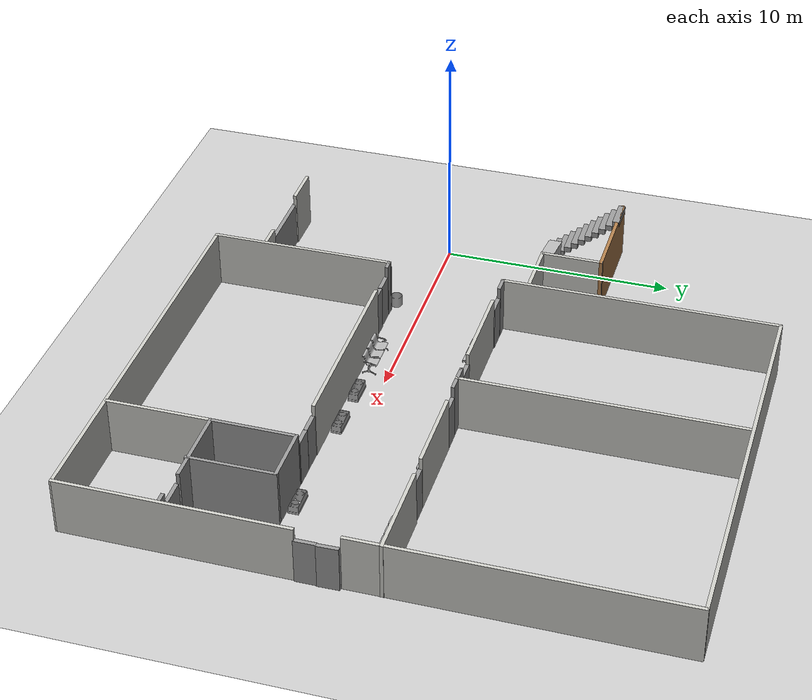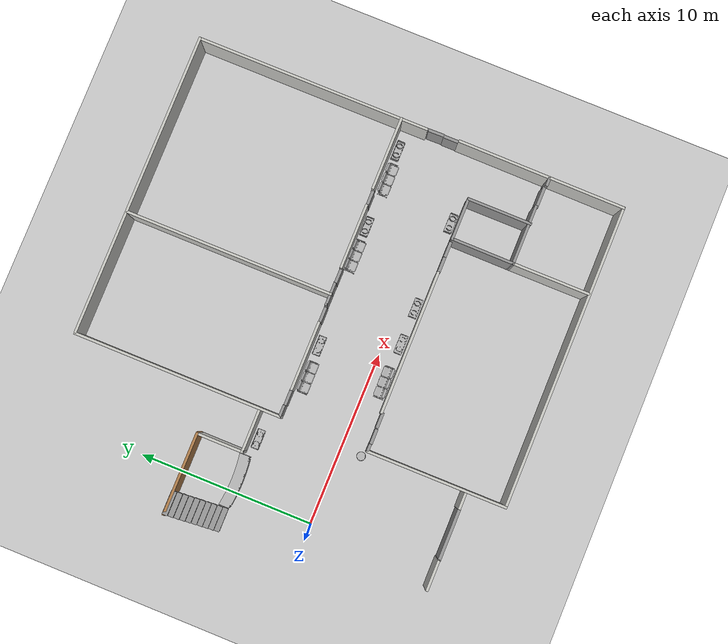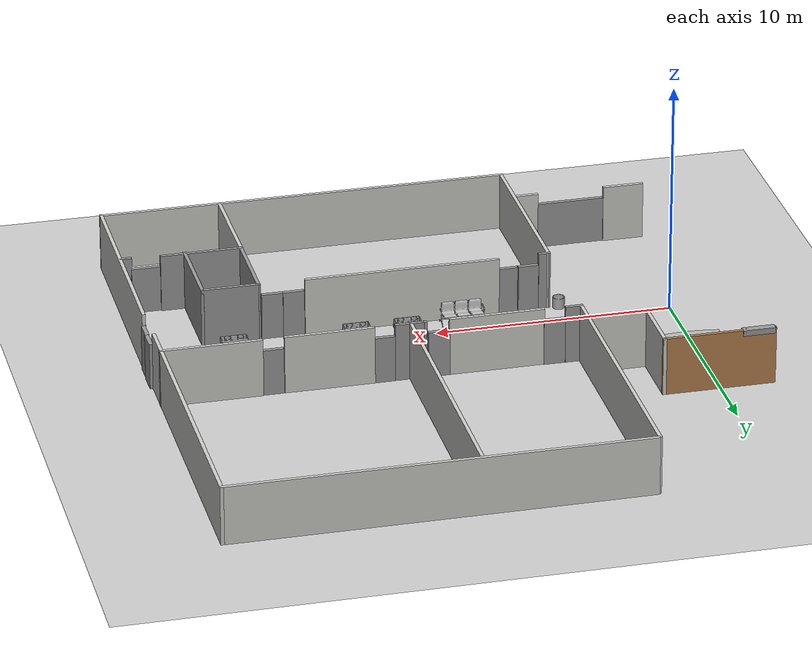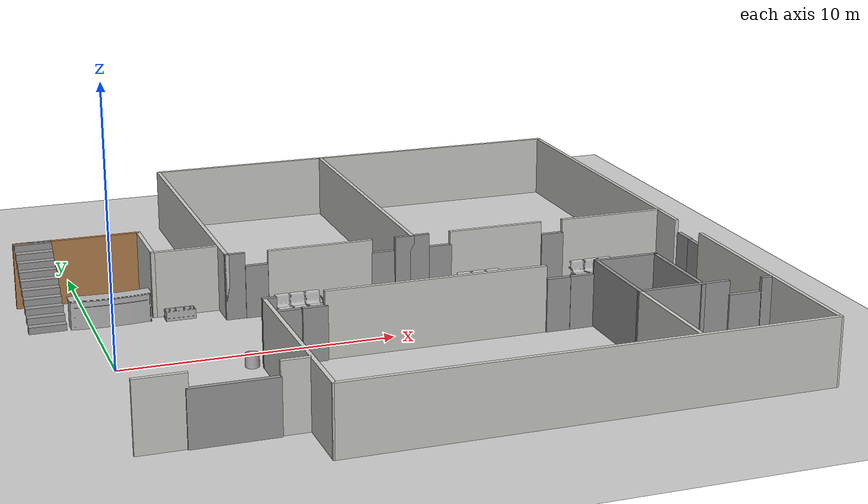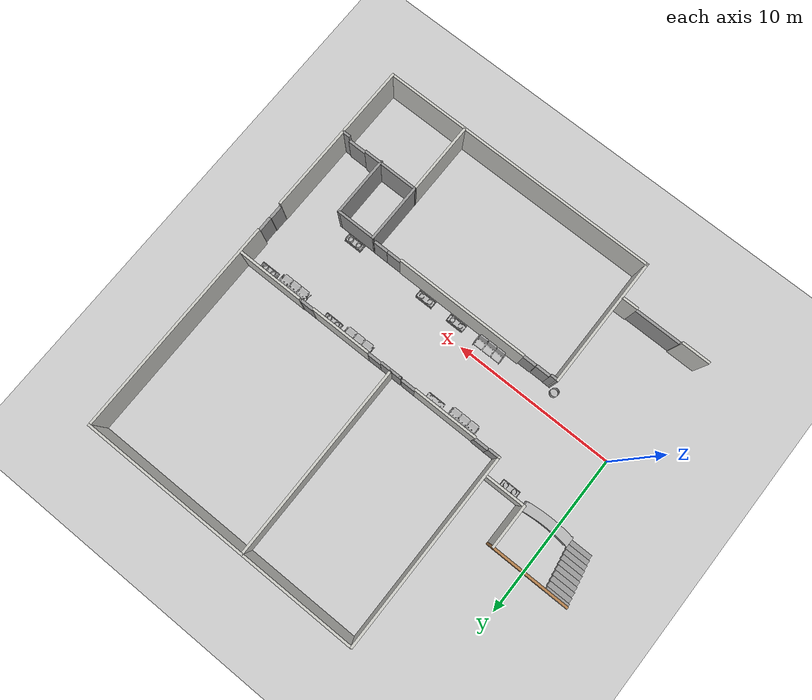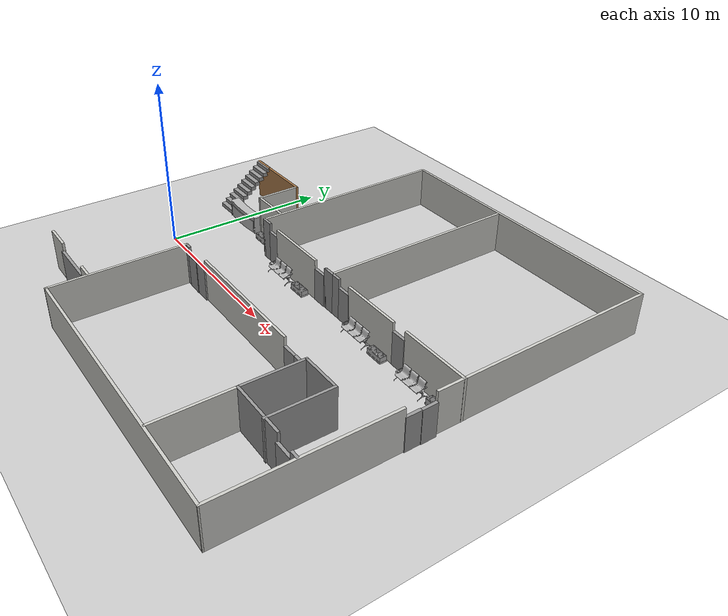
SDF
<sdf version="1.7">
 <world name="default">
  <model name="ground_plane">
   <static>1</static>
   <link name="link">
    <collision name="collision">
     <geometry><plane><normal>0 0 1</normal><size>100 100</size></plane></geometry>
     <surface><friction><ode><mu>100</mu><mu2>50</mu2></ode></friction></surface>
    </collision>
    <visual name="visual">
     <cast_shadows>0</cast_shadows>
     <geometry><plane><normal>0 0 1</normal><size>100 100</size></plane></geometry>
     <material>
      <script><uri>file://media/materials/scripts/gazebo.material</uri><name>Gazebo/Grey</name></script>
     </material>
    </visual>
   </link>
  </model>
  <model name="mts_dept">
   <pose>-0.0371 3.18794 0 0 -0 0</pose>
   <link name="Door_15">
    <collision name="Door_15_Collision">
     <geometry><box><size>1.25 0.17 2</size></box></geometry>
     <pose>0 0 1 0 -0 0</pose>
    </collision>
    <visual name="Door_15_Visual">
     <pose>0 0 1 0 -0 0</pose>
     <geometry><box><size>1.25 0.17 2</size></box></geometry>
     <material>
      <script><uri>file://media/materials/scripts/gazebo.material</uri><name>Gazebo/Grey</name></script>
     </material>
    </visual>
    <pose>21.2511 -8.1066 0 0 -0 0</pose>
   </link>
   <link name="Door_16">
    <collision name="Door_16_Collision">
     <geometry><box><size>0.9 0.17 2</size></box></geometry>
     <pose>0 0 1 0 -0 0</pose>
    </collision>
    <visual name="Door_16_Visual">
     <pose>0 0 1 0 -0 0</pose>
     <geometry><box><size>0.9 0.17 2</size></box></geometry>
     <material>
      <script><uri>file://media/materials/scripts/gazebo.material</uri><name>Gazebo/Grey</name></script>
     </material>
    </visual>
    <pose>16.6903 -4.48944 0 0 -0 0</pose>
   </link>
   <link name="Door_17">
    <collision name="Door_17_Collision">
     <geometry><box><size>0.9 0.17 2</size></box></geometry>
     <pose>0 0 1 0 -0 0</pose>
    </collision>
    <visual name="Door_17_Visual">
     <pose>0 0 1 0 -0 0</pose>
     <geometry><box><size>0.9 0.17 2</size></box></geometry>
     <material>
      <script><uri>file://media/materials/scripts/gazebo.material</uri><name>Gazebo/Grey</name></script>
     </material>
    </visual>
    <pose>15.7856 -4.48922 0 0 -0 0</pose>
   </link>
   <link name="Door_18">
    <collision name="Door_18_Collision">
     <geometry><box><size>0.9 0.17 2</size></box></geometry>
     <pose>0 0 1 0 -0 0</pose>
    </collision>
    <visual name="Door_18_Visual">
     <pose>0 0 1 0 -0 0</pose>
     <geometry><box><size>0.9 0.17 2</size></box></geometry>
     <material>
      <script><uri>file://media/materials/scripts/gazebo.material</uri><name>Gazebo/Grey</name></script>
     </material>
    </visual>
    <pose>5.7737 -4.55958 0 0 -0 0</pose>
   </link>
   <link name="Door_19">
    <collision name="Door_19_Collision">
     <geometry><box><size>0.9 0.17 2</size></box></geometry>
     <pose>0 0 1 0 -0 0</pose>
    </collision>
    <visual name="Door_19_Visual">
     <pose>0 0 1 0 -0 0</pose>
     <geometry><box><size>0.9 0.17 2</size></box></geometry>
     <material>
      <script><uri>file://media/materials/scripts/gazebo.material</uri><name>Gazebo/Grey</name></script>
     </material>
    </visual>
    <pose>6.71198 -4.54003 0 0 -0 0</pose>
   </link>
   <link name="Door_21">
    <collision name="Door_21_Collision">
     <geometry><box><size>3 0.17 2</size></box></geometry>
     <pose>0 0 1 0 -0 0</pose>
    </collision>
    <visual name="Door_21_Visual">
     <pose>0 0 1 0 -0 0</pose>
     <geometry><box><size>3 0.17 2</size></box></geometry>
     <material>
      <script><uri>file://media/materials/scripts/gazebo.material</uri><name>Gazebo/Grey</name></script>
     </material>
    </visual>
    <pose>2.44244 -10.26 0 0 -0 0</pose>
   </link>
   <link name="Door_24">
    <collision name="Door_24_Collision">
     <geometry><box><size>0.9 0.17 2</size></box></geometry>
     <pose>0 0 1 0 -0 0</pose>
    </collision>
    <visual name="Door_24_Visual">
     <pose>0 0 1 0 -0 0</pose>
     <geometry><box><size>0.9 0.17 2</size></box></geometry>
     <material>
      <script><uri>file://media/materials/scripts/gazebo.material</uri><name>Gazebo/Grey</name></script>
     </material>
    </visual>
    <pose>13.1152 0.479726 0 0 -0 0</pose>
   </link>
   <link name="Door_25">
    <collision name="Door_25_Collision">
     <geometry><box><size>0.9 0.17 2</size></box></geometry>
     <pose>0 0 1 0 -0 0</pose>
    </collision>
    <visual name="Door_25_Visual">
     <pose>0 0 1 0 -0 0</pose>
     <geometry><box><size>0.9 0.17 2</size></box></geometry>
     <material>
      <script><uri>file://media/materials/scripts/gazebo.material</uri><name>Gazebo/Grey</name></script>
     </material>
    </visual>
    <pose>10.8334 0.469069 0 0 -0 0</pose>
   </link>
   <link name="Door_26">
    <collision name="Door_26_Collision">
     <geometry><box><size>0.9 0.17 2</size></box></geometry>
     <pose>0 0 1 0 -0 0</pose>
    </collision>
    <visual name="Door_26_Visual">
     <pose>0 0 1 0 -0 0</pose>
     <geometry><box><size>0.9 0.17 2</size></box></geometry>
     <material>
      <script><uri>file://media/materials/scripts/gazebo.material</uri><name>Gazebo/Grey</name></script>
     </material>
    </visual>
    <pose>5.99959 0.502503 0 0 -0 0</pose>
   </link>
   <link name="Door_27">
    <collision name="Door_27_Collision">
     <geometry><box><size>0.9 0.17 2</size></box></geometry>
     <pose>0 0 1 0 -0 0</pose>
    </collision>
    <visual name="Door_27_Visual">
     <pose>0 0 1 0 -0 0</pose>
     <geometry><box><size>0.9 0.17 2</size></box></geometry>
     <material>
      <script><uri>file://media/materials/scripts/gazebo.material</uri><name>Gazebo/Grey</name></script>
     </material>
    </visual>
    <pose>17.7287 0.488148 0 0 -0 0</pose>
   </link>
   <link name="Door_28">
    <collision name="Door_28_Collision">
     <geometry><box><size>0.9 0.17 2</size></box></geometry>
     <pose>0 0 1 0 -0 0</pose>
    </collision>
    <visual name="Door_28_Visual">
     <pose>0 0 1 0 -0 0</pose>
     <geometry><box><size>0.9 0.17 2</size></box></geometry>
     <material>
      <script><uri>file://media/materials/scripts/gazebo.material</uri><name>Gazebo/Grey</name></script>
     </material>
    </visual>
    <pose>22.4147 -1.51478 0 0 -0 1.58982</pose>
   </link>
   <link name="Door_29">
    <collision name="Door_29_Collision">
     <geometry><box><size>0.9 0.17 2</size></box></geometry>
     <pose>0 0 1 0 -0 0</pose>
    </collision>
    <visual name="Door_29_Visual">
     <pose>0 0 1 0 -0 0</pose>
     <geometry><box><size>0.9 0.17 2</size></box></geometry>
     <material>
      <script><uri>file://media/materials/scripts/gazebo.material</uri><name>Gazebo/Grey</name></script>
     </material>
    </visual>
    <pose>22.3942 -2.40723 0 0 -0 1.5708</pose>
   </link>
   <link name="Stairs_4">
    <visual name="Stairs_4_Visual_0">
     <pose>-1.55868 1.45214 0.125 0 0 -3.14159</pose>
     <geometry><box><size>1.36 0.304864 0.25</size></box></geometry>
     <material>
      <script><uri>file://media/materials/scripts/gazebo.material</uri><name>Gazebo/Grey</name></script>
      <ambient>0.368627 0.360784 0.392157 1</ambient>
     </material>
     <meta><layer>0</layer></meta>
    </visual>
    <collision name="Stairs_4_Collision_0">
     <geometry><box><size>1.36 0.304864 0.25</size></box></geometry>
     <pose>-1.55868 1.45214 0.125 0 0 -3.14159</pose>
    </collision>
    <visual name="Stairs_4_Visual_1">
     <pose>-1.55868 1.757 0.375 0 0 -3.14159</pose>
     <geometry><box><size>1.36 0.304864 0.25</size></box></geometry>
     <material>
      <script><uri>file://media/materials/scripts/gazebo.material</uri><name>Gazebo/Grey</name></script>
      <ambient>0.368627 0.360784 0.392157 1</ambient>
     </material>
     <meta><layer>0</layer></meta>
    </visual>
    <collision name="Stairs_4_Collision_1">
     <geometry><box><size>1.36 0.304864 0.25</size></box></geometry>
     <pose>-1.55868 1.757 0.375 0 0 -3.14159</pose>
    </collision>
    <visual name="Stairs_4_Visual_2">
     <pose>-1.55868 2.06187 0.625 0 0 -3.14159</pose>
     <geometry><box><size>1.36 0.304864 0.25</size></box></geometry>
     <material>
      <script><uri>file://media/materials/scripts/gazebo.material</uri><name>Gazebo/Grey</name></script>
      <ambient>0.368627 0.360784 0.392157 1</ambient>
     </material>
     <meta><layer>0</layer></meta>
    </visual>
    <collision name="Stairs_4_Collision_2">
     <geometry><box><size>1.36 0.304864 0.25</size></box></geometry>
     <pose>-1.55868 2.06187 0.625 0 0 -3.14159</pose>
    </collision>
    <visual name="Stairs_4_Visual_3">
     <pose>-1.55868 2.36673 0.875 0 0 -3.14159</pose>
     <geometry><box><size>1.36 0.304864 0.25</size></box></geometry>
     <material>
      <script><uri>file://media/materials/scripts/gazebo.material</uri><name>Gazebo/Grey</name></script>
      <ambient>0.368627 0.360784 0.392157 1</ambient>
     </material>
     <meta><layer>0</layer></meta>
    </visual>
    <collision name="Stairs_4_Collision_3">
     <geometry><box><size>1.36 0.304864 0.25</size></box></geometry>
     <pose>-1.55868 2.36673 0.875 0 0 -3.14159</pose>
    </collision>
    <visual name="Stairs_4_Visual_4">
     <pose>-1.55868 2.67159 1.125 0 0 -3.14159</pose>
     <geometry><box><size>1.36 0.304864 0.25</size></box></geometry>
     <material>
      <script><uri>file://media/materials/scripts/gazebo.material</uri><name>Gazebo/Grey</name></script>
      <ambient>0.368627 0.360784 0.392157 1</ambient>
     </material>
     <meta><layer>0</layer></meta>
    </visual>
    <collision name="Stairs_4_Collision_4">
     <geometry><box><size>1.36 0.304864 0.25</size></box></geometry>
     <pose>-1.55868 2.67159 1.125 0 0 -3.14159</pose>
    </collision>
    <visual name="Stairs_4_Visual_5">
     <pose>-1.55868 2.97646 1.375 0 0 -3.14159</pose>
     <geometry><box><size>1.36 0.304864 0.25</size></box></geometry>
     <material>
      <script><uri>file://media/materials/scripts/gazebo.material</uri><name>Gazebo/Grey</name></script>
      <ambient>0.368627 0.360784 0.392157 1</ambient>
     </material>
     <meta><layer>0</layer></meta>
    </visual>
    <collision name="Stairs_4_Collision_5">
     <geometry><box><size>1.36 0.304864 0.25</size></box></geometry>
     <pose>-1.55868 2.97646 1.375 0 0 -3.14159</pose>
    </collision>
    <visual name="Stairs_4_Visual_6">
     <pose>-1.55868 3.28132 1.625 0 0 -3.14159</pose>
     <geometry><box><size>1.36 0.304864 0.25</size></box></geometry>
     <material>
      <script><uri>file://media/materials/scripts/gazebo.material</uri><name>Gazebo/Grey</name></script>
      <ambient>0.368627 0.360784 0.392157 1</ambient>
     </material>
     <meta><layer>0</layer></meta>
    </visual>
    <collision name="Stairs_4_Collision_6">
     <geometry><box><size>1.36 0.304864 0.25</size></box></geometry>
     <pose>-1.55868 3.28132 1.625 0 0 -3.14159</pose>
    </collision>
    <visual name="Stairs_4_Visual_7">
     <pose>-1.55868 3.58619 1.875 0 0 -3.14159</pose>
     <geometry><box><size>1.36 0.304864 0.25</size></box></geometry>
     <material>
      <script><uri>file://media/materials/scripts/gazebo.material</uri><name>Gazebo/Grey</name></script>
      <ambient>0.368627 0.360784 0.392157 1</ambient>
     </material>
     <meta><layer>0</layer></meta>
    </visual>
    <collision name="Stairs_4_Collision_7">
     <geometry><box><size>1.36 0.304864 0.25</size></box></geometry>
     <pose>-1.55868 3.58619 1.875 0 0 -3.14159</pose>
    </collision>
    <visual name="Stairs_4_Visual_8">
     <pose>-1.55868 3.89105 2.125 0 0 -3.14159</pose>
     <geometry><box><size>1.36 0.304864 0.25</size></box></geometry>
     <material>
      <script><uri>file://media/materials/scripts/gazebo.material</uri><name>Gazebo/Grey</name></script>
      <ambient>0.368627 0.360784 0.392157 1</ambient>
     </material>
     <meta><layer>0</layer></meta>
    </visual>
    <collision name="Stairs_4_Collision_8">
     <geometry><box><size>1.36 0.304864 0.25</size></box></geometry>
     <pose>-1.55868 3.89105 2.125 0 0 -3.14159</pose>
    </collision>
    <visual name="Stairs_4_Visual_9">
     <pose>-1.55868 4.19592 2.375 0 0 -3.14159</pose>
     <geometry><box><size>1.36 0.304864 0.25</size></box></geometry>
     <material>
      <script><uri>file://media/materials/scripts/gazebo.material</uri><name>Gazebo/Grey</name></script>
      <ambient>0.368627 0.360784 0.392157 1</ambient>
     </material>
     <meta><layer>0</layer></meta>
    </visual>
    <collision name="Stairs_4_Collision_9">
     <geometry><box><size>1.36 0.304864 0.25</size></box></geometry>
     <pose>-1.55868 4.19592 2.375 0 0 -3.14159</pose>
    </collision>
   </link>
   <link name="Wall_111">
    <collision name="Wall_111_Collision">
     <geometry><box><size>3.5 0.15 2.5</size></box></geometry>
     <pose>0 0 1.25 0 -0 0</pose>
    </collision>
    <visual name="Wall_111_Visual">
     <pose>0 0 1.25 0 -0 0</pose>
     <geometry><box><size>3.5 0.15 2.5</size></box></geometry>
     <material>
      <script><uri>file://media/materials/scripts/gazebo.material</uri><name>Gazebo/Grey</name></script>
      <ambient>1 1 1 1</ambient>
     </material>
     <meta><layer>0</layer></meta>
    </visual>
    <pose>18.9077 -8.02797 0 0 -0 3.14159</pose>
   </link>
   <link name="Wall_112">
    <collision name="Wall_112_Collision">
     <geometry><box><size>4.5 0.15 2.5</size></box></geometry>
     <pose>0 0 1.25 0 -0 0</pose>
    </collision>
    <visual name="Wall_112_Visual">
     <pose>0 0 1.25 0 -0 0</pose>
     <geometry><box><size>4.5 0.15 2.5</size></box></geometry>
     <material>
      <script><uri>file://media/materials/scripts/gazebo.material</uri><name>Gazebo/CeilingTiled</name></script>
      <ambient>1 1 1 1</ambient>
     </material>
     <meta><layer>0</layer></meta>
    </visual>
    <pose>17.2327 -10.203 0 0 -0 -1.5708</pose>
   </link>
   <link name="Wall_114">
    <collision name="Wall_114_Collision">
     <geometry><box><size>0.5 0.15 2.5</size></box></geometry>
     <pose>0 0 1.25 0 -0 0</pose>
    </collision>
    <visual name="Wall_114_Visual">
     <pose>0 0 1.25 0 -0 0</pose>
     <geometry><box><size>0.5 0.15 2.5</size></box></geometry>
     <material>
      <script><uri>file://media/materials/scripts/gazebo.material</uri><name>Gazebo/Grey</name></script>
      <ambient>1 1 1 1</ambient>
     </material>
     <meta><layer>0</layer></meta>
    </visual>
    <pose>22.0983 -8.14592 0 0 -0 3.14159</pose>
   </link>
   <link name="Wall_116">
    <collision name="Wall_116_Collision">
     <geometry><box><size>2.5 0.15 2.5</size></box></geometry>
     <pose>0 0 1.25 0 -0 0</pose>
    </collision>
    <visual name="Wall_116_Visual">
     <pose>0 0 1.25 0 -0 0</pose>
     <geometry><box><size>2.5 0.15 2.5</size></box></geometry>
     <material>
      <script><uri>file://media/materials/scripts/gazebo.material</uri><name>Gazebo/Grey</name></script>
      <ambient>1 1 1 1</ambient>
     </material>
     <meta><layer>0</layer></meta>
    </visual>
    <pose>18.4248 -4.48944 0 0 -0 3.14159</pose>
   </link>
   <link name="Wall_117">
    <collision name="Wall_117_Collision">
     <geometry><box><size>3.68857 0.15 2.5</size></box></geometry>
     <pose>0 0 1.25 0 -0 0</pose>
    </collision>
    <visual name="Wall_117_Visual">
     <pose>0 0 1.25 0 -0 0</pose>
     <geometry><box><size>3.68857 0.15 2.5</size></box></geometry>
     <material>
      <script><uri>file://media/materials/scripts/gazebo.material</uri><name>Gazebo/Grey</name></script>
      <ambient>1 1 1 1</ambient>
     </material>
     <meta><layer>0</layer></meta>
    </visual>
    <pose>17.2412 -6.2587 0 0 -0 -1.57562</pose>
   </link>
   <link name="Wall_119">
    <collision name="Wall_119_Collision">
     <geometry><box><size>8.25 0.15 2.5</size></box></geometry>
     <pose>0 0 1.25 0 -0 0</pose>
    </collision>
    <visual name="Wall_119_Visual">
     <pose>0 0 1.25 0 -0 0</pose>
     <geometry><box><size>8.25 0.15 2.5</size></box></geometry>
     <material>
      <script><uri>file://media/materials/scripts/gazebo.material</uri><name>Gazebo/CeilingTiled</name></script>
      <ambient>1 1 1 1</ambient>
     </material>
     <meta><layer>0</layer></meta>
    </visual>
    <pose>11.192 -4.46184 0 0 -0 0</pose>
   </link>
   <link name="Wall_122">
    <collision name="Wall_122_Collision">
     <geometry><box><size>0.5 0.15 2.5</size></box></geometry>
     <pose>0 0 1.25 0 -0 0</pose>
    </collision>
    <visual name="Wall_122_Visual">
     <pose>0 0 1.25 0 -0 0</pose>
     <geometry><box><size>0.5 0.15 2.5</size></box></geometry>
     <material>
      <script><uri>file://media/materials/scripts/gazebo.material</uri><name>Gazebo/Grey</name></script>
      <ambient>1 1 1 1</ambient>
     </material>
     <meta><layer>0</layer></meta>
    </visual>
    <pose>5.10893 -4.53609 0 0 -0 0</pose>
   </link>
   <link name="Wall_126">
    <collision name="Wall_126_Collision">
     <geometry><box><size>3.75 0.15 2.5</size></box></geometry>
     <pose>0 0 1.25 0 -0 0</pose>
    </collision>
    <visual name="Wall_126_Visual">
     <pose>0 0 1.25 0 -0 0</pose>
     <geometry><box><size>3.75 0.15 2.5</size></box></geometry>
     <material>
      <script><uri>file://media/materials/scripts/gazebo.material</uri><name>Gazebo/Grey</name></script>
      <ambient>1 1 1 1</ambient>
     </material>
     <meta><layer>0</layer></meta>
    </visual>
    <pose>19.5998 -6.28944 0 0 -0 -1.5708</pose>
   </link>
   <link name="Wall_135">
    <collision name="Wall_135_Collision">
     <geometry><box><size>2.5 0.15 2.5</size></box></geometry>
     <pose>0 0 1.25 0 -0 0</pose>
    </collision>
    <visual name="Wall_135_Visual">
     <pose>0 0 1.25 0 -0 0</pose>
     <geometry><box><size>2.5 0.15 2.5</size></box></geometry>
     <material>
      <script><uri>file://media/materials/scripts/gazebo.material</uri><name>Gazebo/CeilingTiled</name></script>
      <ambient>1 1 1 1</ambient>
     </material>
     <meta><layer>0</layer></meta>
    </visual>
    <pose>3.56759 1.65434 0 0 -0 0</pose>
   </link>
   <link name="Wall_137">
    <collision name="Wall_137_Collision">
     <geometry><box><size>2.75 0.15 2.5</size></box></geometry>
     <pose>0 0 1.25 0 -0 0</pose>
    </collision>
    <visual name="Wall_137_Visual">
     <pose>0 0 1.25 0 -0 0</pose>
     <geometry><box><size>2.75 0.15 2.5</size></box></geometry>
     <material>
      <script><uri>file://media/materials/scripts/gazebo.material</uri><name>Gazebo/CeilingTiled</name></script>
      <ambient>1 1 1 1</ambient>
     </material>
     <meta><layer>0</layer></meta>
    </visual>
    <pose>2.39259 2.95433 0 0 -0 1.5708</pose>
   </link>
   <link name="Wall_138">
    <collision name="Wall_138_Collision">
     <geometry><box><size>4.75 0.15 2.5</size></box></geometry>
     <pose>0 0 1.25 0 -0 0</pose>
    </collision>
    <visual name="Wall_138_Visual">
     <pose>0 0 1.25 0 -0 0</pose>
     <geometry><box><size>4.75 0.15 2.5</size></box></geometry>
     <material>
      <script><uri>file://media/materials/scripts/gazebo.material</uri><name>Gazebo/Wood</name></script>
      <ambient>1 1 1 1</ambient>
     </material>
     <meta><layer>0</layer></meta>
    </visual>
    <pose>0.092593 4.25433 0 0 -0 3.14159</pose>
   </link>
   <link name="Wall_145">
    <collision name="Wall_145_Collision">
     <geometry><box><size>1.75 0.15 2.5</size></box></geometry>
     <pose>0 0 1.25 0 -0 0</pose>
    </collision>
    <visual name="Wall_145_Visual">
     <pose>0 0 1.25 0 -0 0</pose>
     <geometry><box><size>1.75 0.15 2.5</size></box></geometry>
     <material>
      <script><uri>file://media/materials/scripts/gazebo.material</uri><name>Gazebo/CeilingTiled</name></script>
      <ambient>1 1 1 1</ambient>
     </material>
     <meta><layer>0</layer></meta>
    </visual>
    <pose>0.168158 -10.2005 0 0 -0 0</pose>
   </link>
   <link name="Wall_147">
    <collision name="Wall_147_Collision">
     <geometry><box><size>1 0.15 2.5</size></box></geometry>
     <pose>0 0 1.25 0 -0 0</pose>
    </collision>
    <visual name="Wall_147_Visual">
     <pose>0 0 1.25 0 -0 0</pose>
     <geometry><box><size>1 0.15 2.5</size></box></geometry>
     <material>
      <script><uri>file://media/materials/scripts/gazebo.material</uri><name>Gazebo/CeilingTiled</name></script>
      <ambient>1 1 1 1</ambient>
     </material>
     <meta><layer>0</layer></meta>
    </visual>
    <pose>4.41336 -10.2005 0 0 -0 0</pose>
   </link>
   <link name="Wall_170">
    <collision name="Wall_170_Collision">
     <geometry><box><size>12 0.15 2.5</size></box></geometry>
     <pose>0 0 1.25 0 -0 0</pose>
    </collision>
    <visual name="Wall_170_Visual">
     <pose>0 0 1.25 0 -0 0</pose>
     <geometry><box><size>12 0.15 2.5</size></box></geometry>
     <material>
      <script><uri>file://media/materials/scripts/gazebo.material</uri><name>Gazebo/CeilingTiled</name></script>
      <ambient>1 1 1 1</ambient>
     </material>
     <meta><layer>0</layer></meta>
    </visual>
    <pose>11.9938 6.40566 0 0 -0 1.5708</pose>
   </link>
   <link name="Wall_172">
    <collision name="Wall_172_Collision">
     <geometry><box><size>0.75 0.15 2.5</size></box></geometry>
     <pose>0 0 1.25 0 -0 0</pose>
    </collision>
    <visual name="Wall_172_Visual">
     <pose>0 0 1.25 0 -0 0</pose>
     <geometry><box><size>0.75 0.15 2.5</size></box></geometry>
     <material>
      <script><uri>file://media/materials/scripts/gazebo.material</uri><name>Gazebo/Grey</name></script>
      <ambient>1 1 1 1</ambient>
     </material>
     <meta><layer>0</layer></meta>
    </visual>
    <pose>5.17582 0.518761 0 0 -0 0</pose>
   </link>
   <link name="Wall_174">
    <collision name="Wall_174_Collision">
     <geometry><box><size>4 0.15 2.5</size></box></geometry>
     <pose>0 0 1.25 0 -0 0</pose>
    </collision>
    <visual name="Wall_174_Visual">
     <pose>0 0 1.25 0 -0 0</pose>
     <geometry><box><size>4 0.15 2.5</size></box></geometry>
     <material>
      <script><uri>file://media/materials/scripts/gazebo.material</uri><name>Gazebo/CeilingTiled</name></script>
      <ambient>1 1 1 1</ambient>
     </material>
     <meta><layer>0</layer></meta>
    </visual>
    <pose>8.40586 0.475907 0 0 -0 0</pose>
   </link>
   <link name="Wall_179">
    <collision name="Wall_179_Collision">
     <geometry><box><size>0.75 0.15 2.5</size></box></geometry>
     <pose>0 0 1.25 0 -0 0</pose>
    </collision>
    <visual name="Wall_179_Visual">
     <pose>0 0 1.25 0 -0 0</pose>
     <geometry><box><size>0.75 0.15 2.5</size></box></geometry>
     <material>
      <script><uri>file://media/materials/scripts/gazebo.material</uri><name>Gazebo/Grey</name></script>
      <ambient>1 1 1 1</ambient>
     </material>
     <meta><layer>0</layer></meta>
    </visual>
    <pose>11.6938 0.48066 0 0 -0 3.14159</pose>
   </link>
   <link name="Wall_180">
    <collision name="Wall_180_Collision">
     <geometry><box><size>0.15 0.15 2.5</size></box></geometry>
     <pose>0 0 1.25 0 -0 0</pose>
    </collision>
    <visual name="Wall_180_Visual">
     <pose>0 0 1.25 0 -0 0</pose>
     <geometry><box><size>0.15 0.15 2.5</size></box></geometry>
     <material>
      <script><uri>file://media/materials/scripts/gazebo.material</uri><name>Gazebo/Grey</name></script>
      <ambient>1 1 1 1</ambient>
     </material>
     <meta><layer>0</layer></meta>
    </visual>
    <pose>11.3938 0.48066 0 0 -0 0</pose>
   </link>
   <link name="Wall_182">
    <collision name="Wall_182_Collision">
     <geometry><box><size>0.75 0.15 2.5</size></box></geometry>
     <pose>0 0 1.25 0 -0 0</pose>
    </collision>
    <visual name="Wall_182_Visual">
     <pose>0 0 1.25 0 -0 0</pose>
     <geometry><box><size>0.75 0.15 2.5</size></box></geometry>
     <material>
      <script><uri>file://media/materials/scripts/gazebo.material</uri><name>Gazebo/Grey</name></script>
      <ambient>1 1 1 1</ambient>
     </material>
     <meta><layer>0</layer></meta>
    </visual>
    <pose>12.2938 0.48066 0 0 -0 0</pose>
   </link>
   <link name="Wall_184">
    <collision name="Wall_184_Collision">
     <geometry><box><size>3.75 0.15 2.5</size></box></geometry>
     <pose>0 0 1.25 0 -0 0</pose>
    </collision>
    <visual name="Wall_184_Visual">
     <pose>0 0 1.25 0 -0 0</pose>
     <geometry><box><size>3.75 0.15 2.5</size></box></geometry>
     <material>
      <script><uri>file://media/materials/scripts/gazebo.material</uri><name>Gazebo/CeilingTiled</name></script>
      <ambient>1 1 1 1</ambient>
     </material>
     <meta><layer>0</layer></meta>
    </visual>
    <pose>15.3796 0.498072 0 0 -0 0</pose>
   </link>
   <link name="Wall_186">
    <collision name="Wall_186_Collision">
     <geometry><box><size>4.25 0.15 2.5</size></box></geometry>
     <pose>0 0 1.25 0 -0 0</pose>
    </collision>
    <visual name="Wall_186_Visual">
     <pose>0 0 1.25 0 -0 0</pose>
     <geometry><box><size>4.25 0.15 2.5</size></box></geometry>
     <material>
      <script><uri>file://media/materials/scripts/gazebo.material</uri><name>Gazebo/CeilingTiled</name></script>
      <ambient>1 1 1 1</ambient>
     </material>
     <meta><layer>0</layer></meta>
    </visual>
    <pose>20.2638 0.52797 0 0 -0 0</pose>
   </link>
   <link name="Wall_188">
    <collision name="Wall_188_Collision">
     <geometry><box><size>9.71607 0.15 2.5</size></box></geometry>
     <pose>0 0 1.25 0 -0 0</pose>
    </collision>
    <visual name="Wall_188_Visual">
     <pose>0 0 1.25 0 -0 0</pose>
     <geometry><box><size>9.71607 0.15 2.5</size></box></geometry>
     <material>
      <script><uri>file://media/materials/scripts/gazebo.material</uri><name>Gazebo/CeilingTiled</name></script>
      <ambient>1 1 1 1</ambient>
     </material>
     <meta><layer>0</layer></meta>
    </visual>
    <pose>22.3307 -7.67153 0 0 -0 -1.57688</pose>
   </link>
   <link name="Wall_190">
    <collision name="Wall_190_Collision">
     <geometry><box><size>13.5 0.15 2.5</size></box></geometry>
     <pose>0 0 1.25 0 -0 0</pose>
    </collision>
    <visual name="Wall_190_Visual">
     <pose>0 0 1.25 0 -0 0</pose>
     <geometry><box><size>13.5 0.15 2.5</size></box></geometry>
     <material>
      <script><uri>file://media/materials/scripts/gazebo.material</uri><name>Gazebo/CeilingTiled</name></script>
      <ambient>1 1 1 1</ambient>
     </material>
     <meta><layer>0</layer></meta>
    </visual>
    <pose>22.3016 5.72053 0 0 -0 -1.5708</pose>
   </link>
   <link name="Wall_35">
    <collision name="Wall_35_Collision">
     <geometry><box><size>17.5 0.15 2.5</size></box></geometry>
     <pose>0 0 1.25 0 -0 0</pose>
    </collision>
    <visual name="Wall_35_Visual">
     <pose>0 0 1.25 0 -0 0</pose>
     <geometry><box><size>17.5 0.15 2.5</size></box></geometry>
     <material>
      <script><uri>file://media/materials/scripts/gazebo.material</uri><name>Gazebo/CeilingTiled</name></script>
      <ambient>1 1 1 1</ambient>
     </material>
     <meta><layer>0</layer></meta>
    </visual>
    <pose>13.6266 12.3955 0 0 -0 3.14159</pose>
   </link>
   <link name="Wall_50">
    <collision name="Wall_50_Collision">
     <geometry><box><size>8.0684 0.15 2.5</size></box></geometry>
     <pose>0 0 1.25 0 -0 0</pose>
    </collision>
    <visual name="Wall_50_Visual">
     <pose>0 0 1.25 0 -0 0</pose>
     <geometry><box><size>8.0684 0.15 2.5</size></box></geometry>
     <material>
      <script><uri>file://media/materials/scripts/gazebo.material</uri><name>Gazebo/CeilingTiled</name></script>
      <ambient>1 1 1 1</ambient>
     </material>
     <meta><layer>0</layer></meta>
    </visual>
    <pose>4.94279 -8.49528 0 0 -0 -1.56856</pose>
   </link>
   <link name="Wall_55">
    <collision name="Wall_55_Collision">
     <geometry><box><size>12 0.15 2.5</size></box></geometry>
     <pose>0 0 1.25 0 -0 0</pose>
    </collision>
    <visual name="Wall_55_Visual">
     <pose>0 0 1.25 0 -0 0</pose>
     <geometry><box><size>12 0.15 2.5</size></box></geometry>
     <material>
      <script><uri>file://media/materials/scripts/gazebo.material</uri><name>Gazebo/CeilingTiled</name></script>
      <ambient>1 1 1 1</ambient>
     </material>
     <meta><layer>0</layer></meta>
    </visual>
    <pose>4.87582 6.44376 0 0 -0 1.5708</pose>
   </link>
   <link name="Wall_6">
    <collision name="Wall_6_Collision">
     <geometry><box><size>17.5 0.15 2.5</size></box></geometry>
     <pose>0 0 1.25 0 -0 0</pose>
    </collision>
    <visual name="Wall_6_Visual">
     <pose>0 0 1.25 0 -0 0</pose>
     <geometry><box><size>17.5 0.15 2.5</size></box></geometry>
     <material>
      <script><uri>file://media/materials/scripts/gazebo.material</uri><name>Gazebo/CeilingTiled</name></script>
      <ambient>1 1 1 1</ambient>
     </material>
     <meta><layer>0</layer></meta>
    </visual>
    <pose>13.6266 -12.4545 0 0 -0 0</pose>
   </link>
   <static>1</static>
  </model>
  <model name="reception_desk">
   <link name="link_0">
    <visual name="visual">
     <geometry>
      <mesh><uri>model://reception_desk/meshes/reception_desk.dae</uri><scale>1.3 1.3 1.3</scale></mesh>
     </geometry>
     <cast_shadows>0</cast_shadows>
    </visual>
    <collision name="collision">
     <geometry>
      <mesh><uri>model://reception_desk/meshes/reception_desk.dae</uri><scale>1.3 1.3 1.3</scale></mesh>
     </geometry>
    </collision>
    <inertial>
     <inertia><ixx>1</ixx><ixy>0</ixy><ixz>0</ixz><iyy>1</iyy><iyz>0</iyz><izz>1</izz></inertia>
     <mass>1</mass>
    </inertial>
   </link>
   <static>0</static>
   <pose>0.701099 4.60998 -0.015357 -2e-06 -1e-06 0.004302</pose>
  </model>
  <model name="waiting_chair_2">
   <link name="link_0">
    <visual name="visual">
     <geometry>
      <mesh><uri>model://waiting_chair_2/meshes/waiting_chair_2.dae</uri><scale>1 1 1</scale></mesh>
     </geometry>
     <cast_shadows>0</cast_shadows>
    </visual>
    <collision name="collision">
     <geometry>
      <mesh><uri>model://waiting_chair_2/meshes/waiting_chair_2.dae</uri><scale>1 1 1</scale></mesh>
     </geometry>
    </collision>
   </link>
   <static>1</static>
   <pose>8.7013 -0.8096 0 0 0 -3.13566</pose>
  </model>
  <model name="waiting_chair_2_0">
   <link name="link_0">
    <visual name="visual">
     <geometry>
      <mesh><uri>model://waiting_chair_2/meshes/waiting_chair_2.dae</uri><scale>1 1 1</scale></mesh>
     </geometry>
     <cast_shadows>0</cast_shadows>
    </visual>
    <collision name="collision">
     <geometry>
      <mesh><uri>model://waiting_chair_2/meshes/waiting_chair_2.dae</uri><scale>1 1 1</scale></mesh>
     </geometry>
    </collision>
   </link>
   <static>1</static>
   <pose>7.38009 3.16926 0 0 -0 0</pose>
  </model>
  <model name="waiting_chair_2_1">
   <link name="link_0">
    <visual name="visual">
     <geometry>
      <mesh><uri>model://waiting_chair_2/meshes/waiting_chair_2.dae</uri><scale>1 1 1</scale></mesh>
     </geometry>
     <cast_shadows>0</cast_shadows>
    </visual>
    <collision name="collision">
     <geometry>
      <mesh><uri>model://waiting_chair_2/meshes/waiting_chair_2.dae</uri><scale>1 1 1</scale></mesh>
     </geometry>
    </collision>
   </link>
   <static>1</static>
   <pose>14.6021 3.29806 0 0 -0 0</pose>
  </model>
  <model name="waiting_chair_2_2">
   <link name="link_0">
    <visual name="visual">
     <geometry>
      <mesh><uri>model://waiting_chair_2/meshes/waiting_chair_2.dae</uri><scale>1 1 1</scale></mesh>
     </geometry>
     <cast_shadows>0</cast_shadows>
    </visual>
    <collision name="collision">
     <geometry>
      <mesh><uri>model://waiting_chair_2/meshes/waiting_chair_2.dae</uri><scale>1 1 1</scale></mesh>
     </geometry>
    </collision>
   </link>
   <static>1</static>
   <pose>19.2527 3.20542 0 0 -0 0</pose>
  </model>
  <model name="plant_wooden_box_10">
   <link name="link_0">
    <visual name="visual">
     <geometry>
      <mesh><uri>model://plant_wooden_box/meshes/plant_wooden_box.dae</uri><scale>0.8 1 1</scale></mesh>
     </geometry>
     <cast_shadows>0</cast_shadows>
    </visual>
    <collision name="collision">
     <geometry>
      <mesh><uri>model://plant_wooden_box/meshes/plant_wooden_box.stl</uri><scale>0.8 1 1</scale></mesh>
     </geometry>
    </collision>
   </link>
   <static>1</static>
   <pose>3.21184 4.43896 0 0 -0 0</pose>
  </model>
  <model name="plant_wooden_box_0">
   <link name="link_0">
    <visual name="visual">
     <geometry>
      <mesh><uri>model://plant_wooden_box/meshes/plant_wooden_box.dae</uri><scale>0.8 1 1</scale></mesh>
     </geometry>
     <cast_shadows>0</cast_shadows>
    </visual>
    <collision name="collision">
     <geometry>
      <mesh><uri>model://plant_wooden_box/meshes/plant_wooden_box.stl</uri><scale>0.8 1 1</scale></mesh>
     </geometry>
    </collision>
   </link>
   <static>1</static>
   <pose>9.25565 3.26353 0 0 -0 0</pose>
  </model>
  <model name="plant_wooden_box_3">
   <link name="link_0">
    <visual name="visual">
     <geometry>
      <mesh><uri>model://plant_wooden_box/meshes/plant_wooden_box.dae</uri><scale>0.8 1 1</scale></mesh>
     </geometry>
     <cast_shadows>0</cast_shadows>
    </visual>
    <collision name="collision">
     <geometry>
      <mesh><uri>model://plant_wooden_box/meshes/plant_wooden_box.stl</uri><scale>0.8 1 1</scale></mesh>
     </geometry>
    </collision>
   </link>
   <static>1</static>
   <pose>11.0223 -0.890529 0 0 -0 0</pose>
  </model>
  <model name="plant_wooden_box_2">
   <link name="link_0">
    <visual name="visual">
     <geometry>
      <mesh><uri>model://plant_wooden_box/meshes/plant_wooden_box.dae</uri><scale>0.8 1 1</scale></mesh>
     </geometry>
     <cast_shadows>0</cast_shadows>
    </visual>
    <collision name="collision">
     <geometry>
      <mesh><uri>model://plant_wooden_box/meshes/plant_wooden_box.stl</uri><scale>0.8 1 1</scale></mesh>
     </geometry>
    </collision>
   </link>
   <static>1</static>
   <pose>13.1932 -0.895022 0 0 -0 0</pose>
  </model>
  <model name="plant_wooden_box_1">
   <link name="link_0">
    <visual name="visual">
     <geometry>
      <mesh><uri>model://plant_wooden_box/meshes/plant_wooden_box.dae</uri><scale>0.8 1 1</scale></mesh>
     </geometry>
     <cast_shadows>0</cast_shadows>
    </visual>
    <collision name="collision">
     <geometry>
      <mesh><uri>model://plant_wooden_box/meshes/plant_wooden_box.stl</uri><scale>0.8 1 1</scale></mesh>
     </geometry>
    </collision>
   </link>
   <static>1</static>
   <pose>16.4049 3.33187 0 0 -0 0</pose>
  </model>
  <model name="plant_wooden_box_4">
   <link name="link_0">
    <visual name="visual">
     <geometry>
      <mesh><uri>model://plant_wooden_box/meshes/plant_wooden_box.dae</uri><scale>0.8 1 1</scale></mesh>
     </geometry>
     <cast_shadows>0</cast_shadows>
    </visual>
    <collision name="collision">
     <geometry>
      <mesh><uri>model://plant_wooden_box/meshes/plant_wooden_box.stl</uri><scale>0.8 1 1</scale></mesh>
     </geometry>
    </collision>
   </link>
   <static>1</static>
   <pose>18.3366 -0.944994 0 0 -0 0</pose>
  </model>
  <model name="plant_wooden_box_6">
   <link name="link_0">
    <visual name="visual">
     <geometry>
      <mesh><uri>model://plant_wooden_box/meshes/plant_wooden_box.dae</uri><scale>0.8 1 1</scale></mesh>
     </geometry>
     <cast_shadows>0</cast_shadows>
    </visual>
    <collision name="collision">
     <geometry>
      <mesh><uri>model://plant_wooden_box/meshes/plant_wooden_box.stl</uri><scale>0.8 1 1</scale></mesh>
     </geometry>
    </collision>
   </link>
   <static>1</static>
   <pose>21.0261 3.32884 0 0 -0 0</pose>
  </model>
  <model name="flower_pot_0">
   <link name="link_0">
    <visual name="visual">
     <geometry>
      <mesh><uri>model://flower_pot/meshes/flower_pot.dae</uri><scale>1.35 1.35 1.35</scale></mesh>
     </geometry>
     <cast_shadows>0</cast_shadows>
    </visual>
    <collision name="collision">
     <geometry>
      <mesh><uri>model://flower_pot/meshes/flower_pot.stl</uri><scale>1.35 1.35 1.35</scale></mesh>
     </geometry>
    </collision>
    <inertial>
     <inertia><ixx>1</ixx><ixy>0</ixy><ixz>0</ixz><iyy>1</iyy><iyz>0</iyz><izz>1</izz></inertia>
     <mass>1</mass>
    </inertial>
   </link>
   <static>0</static>
   <pose>4.48606 -1.15881 3e-06 1e-06 1.7e-05 0</pose>
  </model>
 </world>
</sdf>
